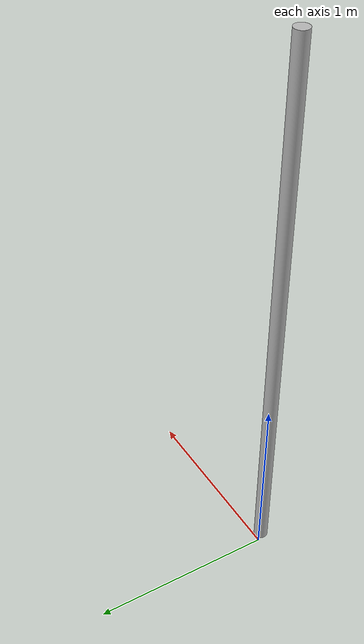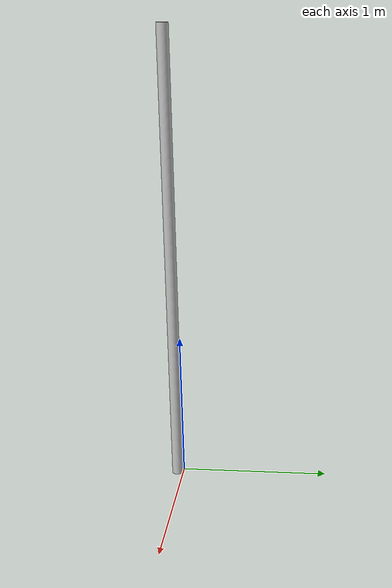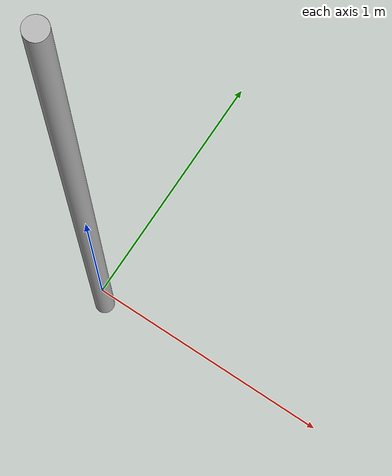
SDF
<?xml version="1.0"?>
<sdf version="1.5">
  <model name="qual_pole">
    <static>true</static>
    <link name="qual_pole">
      <collision name='qual_polecol'>
        <pose>0 0 0 1.57 0 0</pose>
        <geometry>
          <mesh>
            <uri>file://start_gate/qual_pole.dae</uri>
          </mesh>
        </geometry>
      </collision>
      <visual name="qual_polevis">
        <pose>0 0 0 1.57 0 0</pose>
        <geometry>
          <mesh>
            <uri>file://start_gate/qual_pole.dae</uri>
          </mesh>
        </geometry>
      </visual>
    </link>
  </model>
</sdf>
